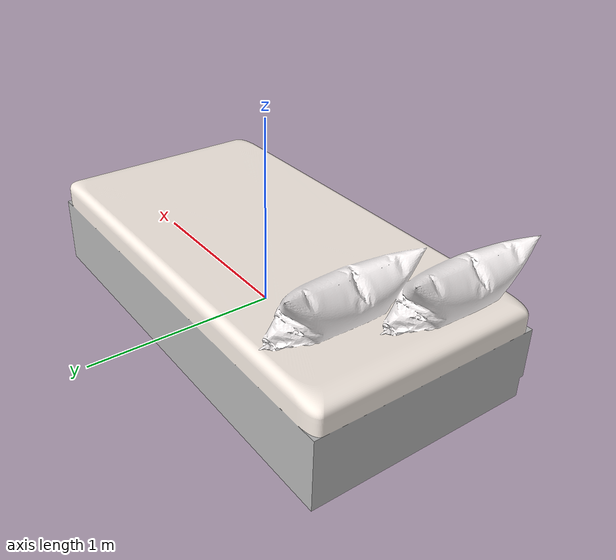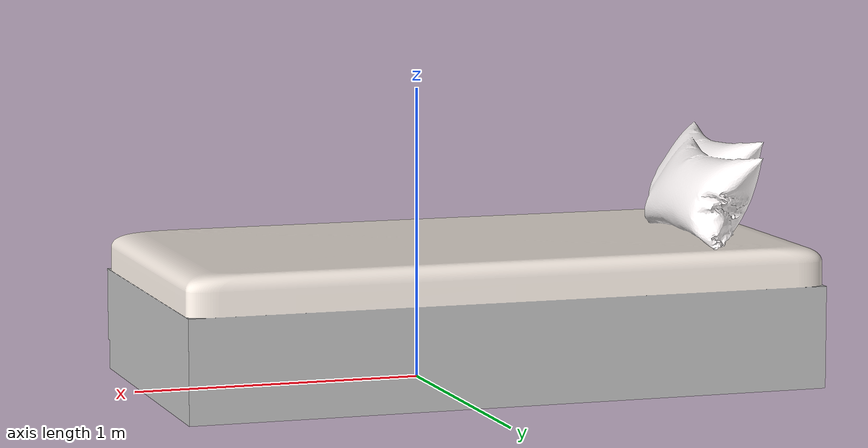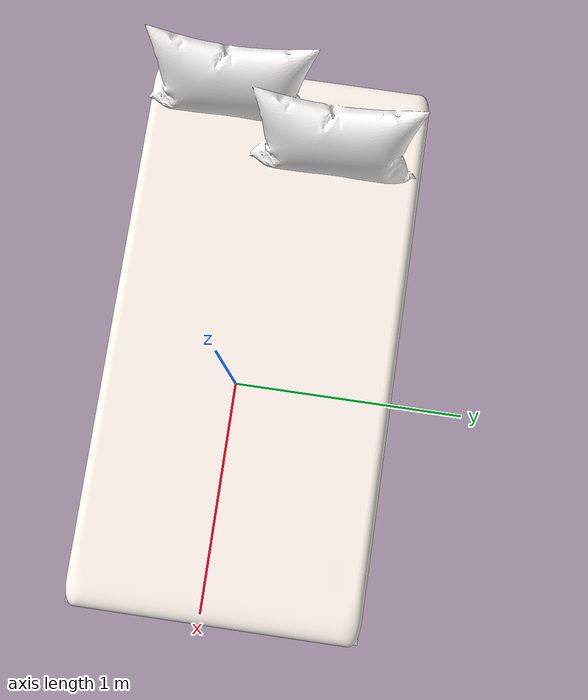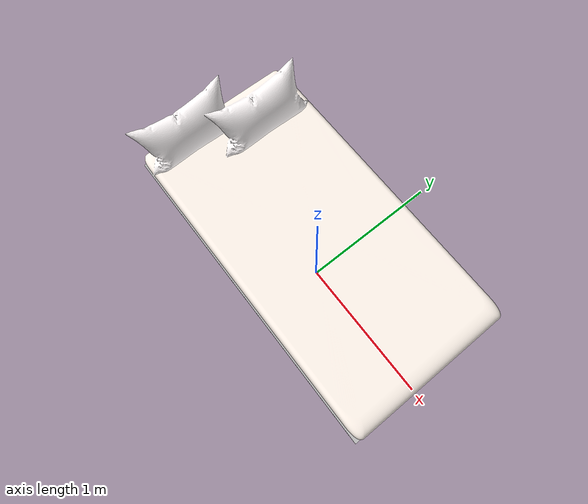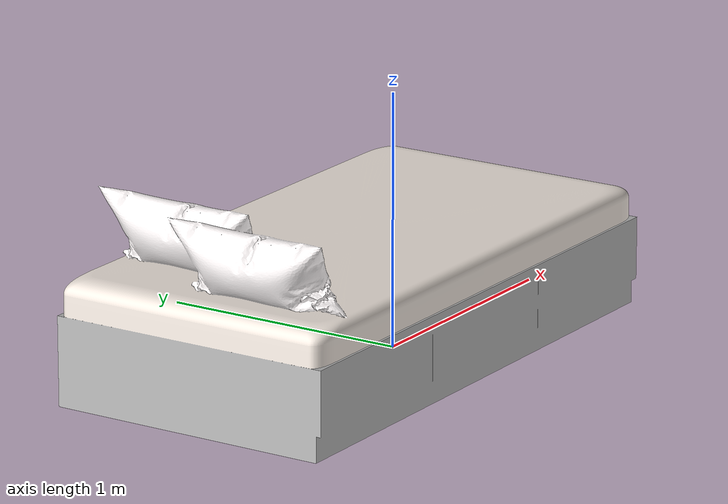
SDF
<?xml version="1.0" ?>
<sdf version="1.5">
  <model name="Bed">
    <static>true</static>
    <link name="link">
      <pose degrees="true">-1.25 -0.5 0 0 0 0</pose>
      <visual name="visual">
        <geometry>
          <mesh>
            <uri>model://bed_0/model.dae</uri>
          </mesh>
        </geometry>
      </visual>
    </link>
  </model>
</sdf>
